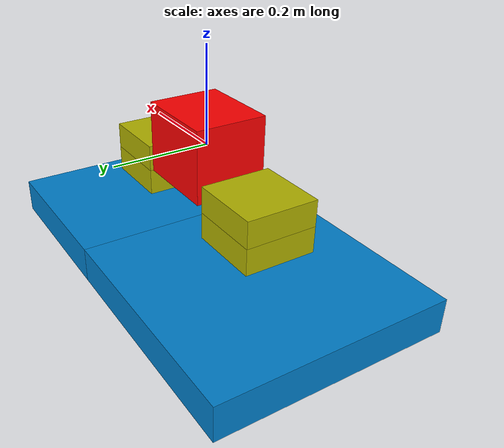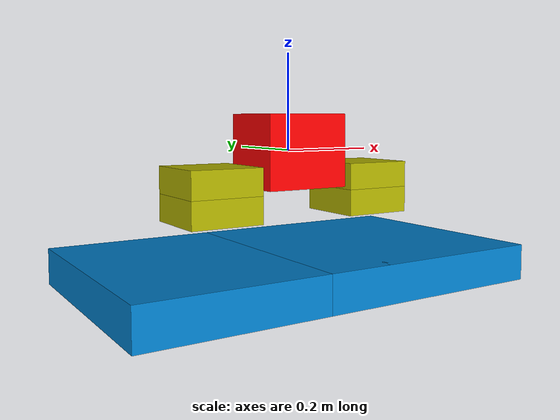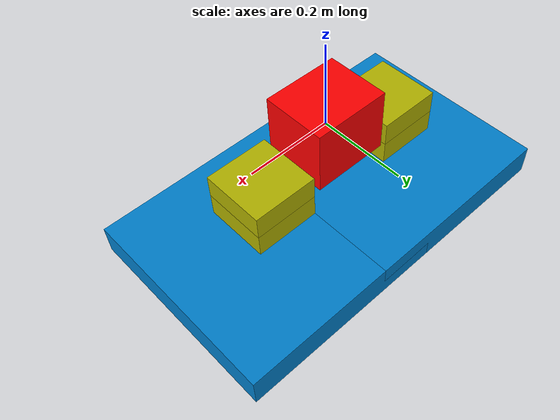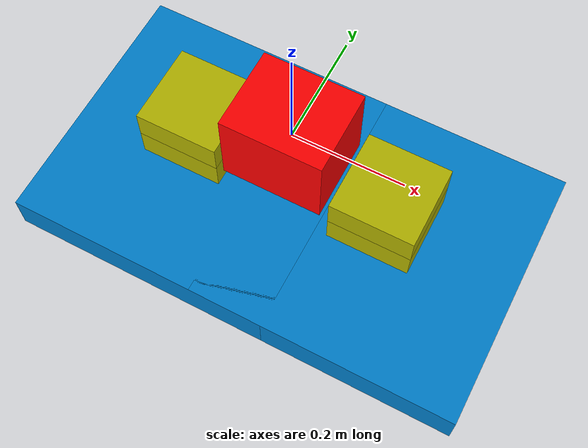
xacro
<?xml version="1.0" ?>
<robot xmlns:xacro="http://www.ros.org/wiki/xacro"  name="kumi">

    <xacro:include filename="/home/andreas/dev_ws/src/kumi/description/xacro/variables.xacro" />
    <xacro:include filename="/home/andreas/dev_ws/src/kumi/description/xacro/controls.xacro" />
    <xacro:include filename="/home/andreas/dev_ws/src/kumi/description/xacro/kumi_core.xacro" />

</robot>

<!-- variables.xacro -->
<robot xmlns:xacro="http://www.ros.org/wiki/xacro"  name="kumi">

    <xacro:property name="pi" value="3.14159" />
    <xacro:property name="ang_low_lim" value="0.85" />
    <xacro:property name="ang_up_lim" value="4" />
    <xacro:property name="thikness" value="0.15" />
    <xacro:property name="lenght" value="0.18" />
    <xacro:property name="leg_len" value="0.11" />
    <xacro:property name="foot_len" value="0.5" />
    <xacro:property name="toll" value="0.005" />
    <xacro:property name="mass" value="0.3" />
    <xacro:property name="joint_friction" value="0.2" />

</robot>

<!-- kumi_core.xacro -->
<robot xmlns:xacro="http://www.ros.org/wiki/xacro"  name="kumi">

    <link name="body">
        <visual>
            <origin xyz="0 0 0" rpy="0 0 0"/>
            <geometry>
                <box size="${lenght} ${thikness} ${thikness}" />
            </geometry>
            <material name="green">
                <color rgba="1 0 0 1"/>
            </material>
        </visual>
        <collision>
            <origin xyz="0 0 0" rpy="0 0 0"/>
            <geometry>
                <box size="${lenght-toll} ${thikness-toll} ${thikness-toll}" />
            </geometry>
        </collision>
        <inertial>
            <origin xyz="0 0 0" rpy="0 0 0"/>
            <mass value="0.4" />
            <inertia ixx="0.001875" ixy="0.0" ixz="0.0" iyy="0.011354" iyz="0.0" izz="0.011354" />
        </inertial>
    </link>

   <joint name="front_sh" type="revolute">
        <origin xyz="${lenght} 0 0" rpy="0 0 0"/>
        <parent link="body"/>
        <child link="front_leg"/>
        <axis xyz="0 -1 0"/>
        <limit lower="-0.85" upper="${pi - 0.85}" velocity="5" effort="6"/>
        <dynamics damping="0.5" friction="${joint_friction}"/>
    </joint>

    <link name="front_leg">
        <visual>
            <origin xyz="0 0 ${-leg_len/2}" rpy="0 0 0"/>
            <geometry>
                <box size="${thikness} ${thikness} ${leg_len/2}" />
            </geometry>
            <material name="orange">
                <color rgba="0.7 0.7 0 1"/>
            </material>
        </visual>
        <collision>
            <origin xyz="0 0 ${-leg_len/2}" rpy="0 0 0"/>
            <geometry>
                <box size="${thikness-toll} ${thikness-toll} ${leg_len/2-toll}" />
            </geometry>
        </collision>
        <inertial>
            <origin xyz="0 0 ${-leg_len/2}" rpy="0 0 0"/>
            <mass value="0.2" />
            <inertia ixx="0.001562" ixy="0.0" ixz="0.0" iyy="0.001562" iyz="0.0" izz="0.001125" />
        </inertial>
    </link>

    <joint name="front_knee" type="revolute">
        <origin xyz="0 0 ${-leg_len}" rpy="0 0 0"/>
        <parent link="front_leg"/>
        <child link="front_leg_d"/>
        <axis xyz="0 0 1"/>
        <limit lower="0.0" upper="0.0" velocity="5" effort="2"/>
        <dynamics damping="10.0" friction="10.0"/>
    </joint>

    <link name="front_leg_d">
        <visual>
            <origin xyz="0 0 0" rpy="0 0 0"/>
            <geometry>
                <box size="${thikness} ${thikness} ${leg_len/2}" />
            </geometry>
            <material name="orange">
                <color rgba="0.7 0.7 0 1"/>
            </material>
        </visual>
        <collision>
            <origin xyz="0 0 0" rpy="0 0 0"/>
            <geometry>
                <box size="${thikness-toll} ${thikness-toll} ${leg_len/2-toll}" />
            </geometry>
        </collision>
        <inertial>
            <origin xyz="0 0 0" rpy="0 0 0"/>
            <mass value="0.2" />
            <inertia ixx="0.001562" ixy="0.0" ixz="0.0" iyy="0.001562" iyz="0.0" izz="0.001125" />
        </inertial>
    </link>

    <joint name="front_ank" type="revolute">
        <origin xyz="0 0 ${-leg_len/4 - thikness/4}" rpy="0 0 0"/>
        <parent link="front_leg_d"/>
        <child link="front_foot"/>
        <axis xyz="0 -1 0"/>
        <limit lower="-0.85" upper="0.85" velocity="5" effort="6"/>
        <dynamics damping="0.1" friction="${joint_friction}"/>
    </joint>

    <link name="front_foot">
        <visual>
            <origin xyz="0 0 ${-leg_len/4 - thikness/4}" rpy="0 0 0"/>
            <geometry>
                <box size="${foot_len} ${foot_len} ${thikness/2}" />
            </geometry>
            <material name="white">
                <color rgba="0 0.5 0.8 1"/>
            </material>
        </visual>
        <collision>
            <origin xyz="0 0 ${-leg_len/4 - thikness/4}" rpy="0 0 0"/>
            <geometry>
                <box size="${foot_len-toll} ${foot_len-toll} ${thikness/2-toll}" />
            </geometry>
        </collision>
        <inertial>
            <origin xyz="0 0 ${-leg_len/4 - thikness/4}" rpy="0 0 0"/>
            <mass value="0.15" />
            <inertia ixx="0.001135" ixy="0.0" ixz="0.0" iyy="0.001135" iyz="0.0" izz="0.002083" />
        </inertial>
    </link>

    <joint name="back_sh" type="revolute">
        <origin xyz="${-lenght} 0 0" rpy="0 0 0"/>
        <parent link="body"/>
        <child link="back_leg"/>
        <axis xyz="0 -1 0"/>
        <limit lower="${-pi + 0.3}" upper="0.3" velocity="5" effort="6"/>
        <dynamics damping="0.1" friction="${joint_friction}"/>
    </joint>

    <link name="back_leg">
        <visual>
            <origin xyz="0 0 ${-leg_len/2}" rpy="0 0 0"/>
            <geometry>
                <box size="${thikness} ${thikness} ${leg_len/2}" />
            </geometry>
            <material name="orange">
                <color rgba="0.7 0.7 0 1"/>
            </material>
        </visual>
        <collision>
            <origin xyz="0 0 ${-leg_len/2}" rpy="0 0 0"/>
            <geometry>
                <box size="${thikness-toll} ${thikness-toll} ${leg_len/2-toll}" />
            </geometry>
        </collision>
        <inertial>
            <origin xyz="0 0 ${-leg_len/2}" rpy="0 0 0"/>
            <mass value="0.2" />
            <inertia ixx="0.001562" ixy="0.0" ixz="0.0" iyy="0.001562" iyz="0.0" izz="0.001125" />
        </inertial>
    </link>

    <joint name="back_knee" type="revolute">
        <origin xyz="0 0 ${-leg_len}" rpy="0 0 0"/>
        <parent link="back_leg"/>
        <child link="back_leg_d"/>
        <axis xyz="0 0 1"/>
        <limit lower="0.0" upper="0.0" velocity="5" effort="2"/>
        <dynamics damping="10.0" friction="10.0"/>
    </joint>

    <link name="back_leg_d">
        <visual>
            <origin xyz="0 0 0" rpy="0 0 0"/>
            <geometry>
                <box size="${thikness} ${thikness} ${leg_len/2}" />
            </geometry>
            <material name="orange">
                <color rgba="0.7 0.7 0 1"/>
            </material>
        </visual>
        <collision>
            <origin xyz="0 0 0" rpy="0 0 0"/>
            <geometry>
                <box size="${thikness-toll} ${thikness-toll} ${leg_len/2-toll}" />
            </geometry>
        </collision>
        <inertial>
            <origin xyz="0 0 0" rpy="0 0 0"/>
            <mass value="0.2" />
            <inertia ixx="0.001562" ixy="0.0" ixz="0.0" iyy="0.001562" iyz="0.0" izz="0.001125" />
        </inertial>
    </link>

    <joint name="back_ank" type="revolute">
        <origin xyz="0 0 ${-leg_len/4 - thikness/4}" rpy="0 0 0"/>
        <parent link="back_leg_d"/>
        <child link="back_foot"/>
        <axis xyz="0 -1 0"/>
        <limit lower="-0.85" upper="0.85" velocity="5" effort="6"/>
        <dynamics damping="0.1" friction="${joint_friction}"/>
    </joint>

    <link name="back_foot">
        <visual>
            <origin xyz="0 0 ${-leg_len/4 - thikness/4}" rpy="0 0 0"/>
            <geometry>
                <box size="${foot_len} ${foot_len} ${thikness/2}" />
            </geometry>
            <material name="white">
                <color rgba="0 0.5 0.8 1"/>
            </material>
        </visual>
        <collision>
            <origin xyz="0 0 ${-leg_len/4 - thikness/4}" rpy="0 0 0"/>
            <geometry>
                <box size="${foot_len-toll} ${foot_len-toll} ${thikness/2-toll}" />
            </geometry>
        </collision>
        <inertial>
            <origin xyz="0 0 ${-leg_len/4 - thikness/4}" rpy="0 0 0"/>
            <mass value="0.15" />
            <inertia ixx="0.001135" ixy="0.0" ixz="0.0" iyy="0.001135" iyz="0.0" izz="0.002083" />
        </inertial>
    </link>

</robot>
